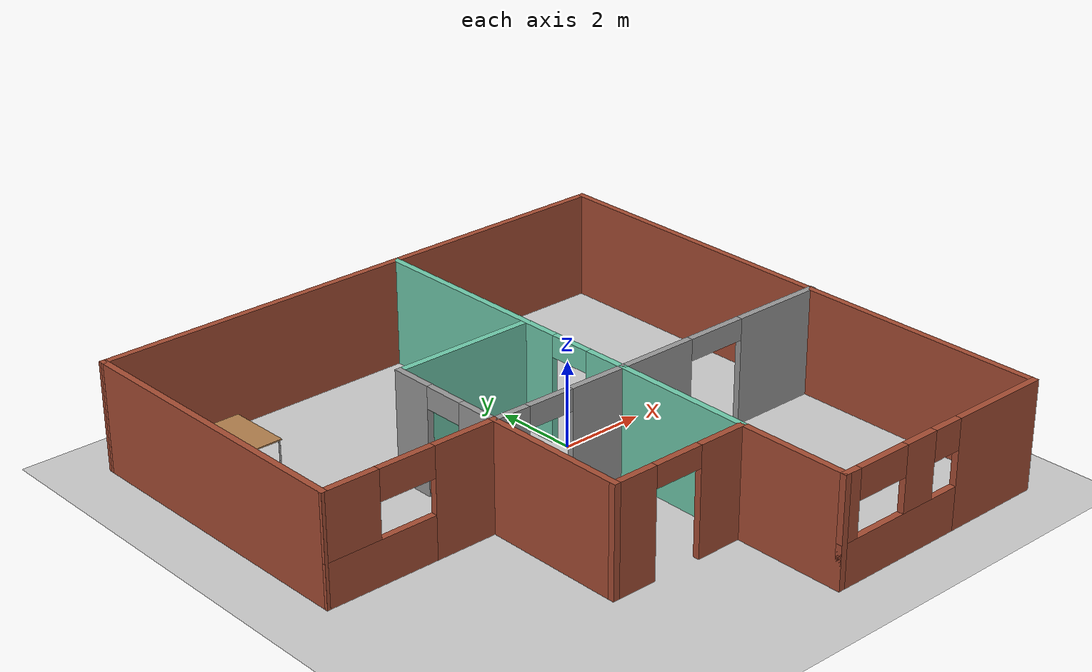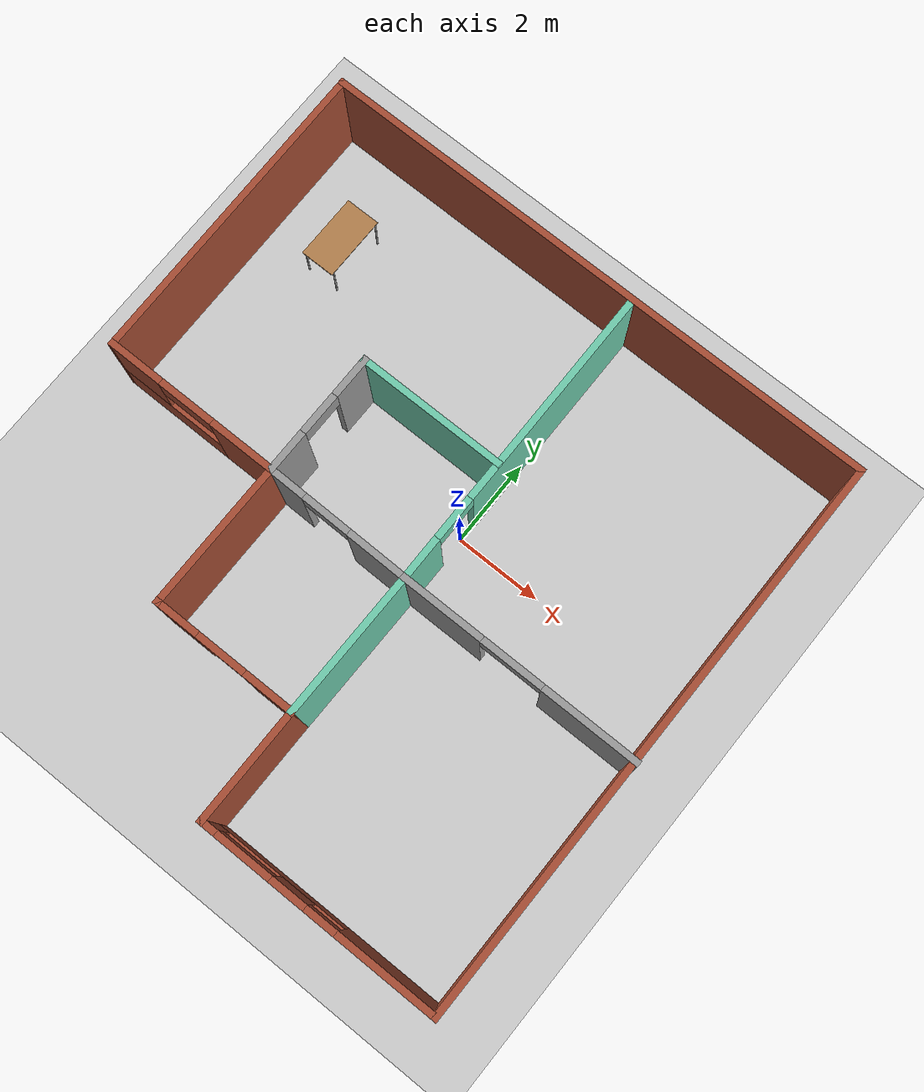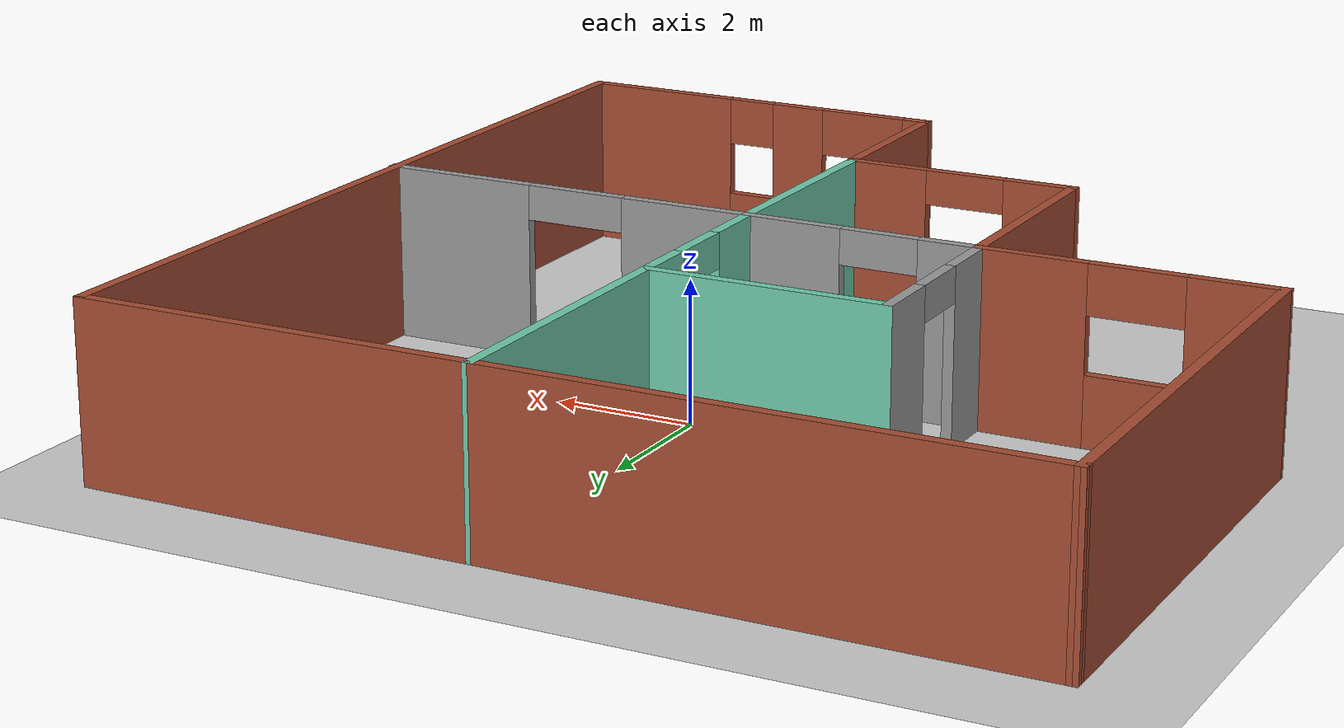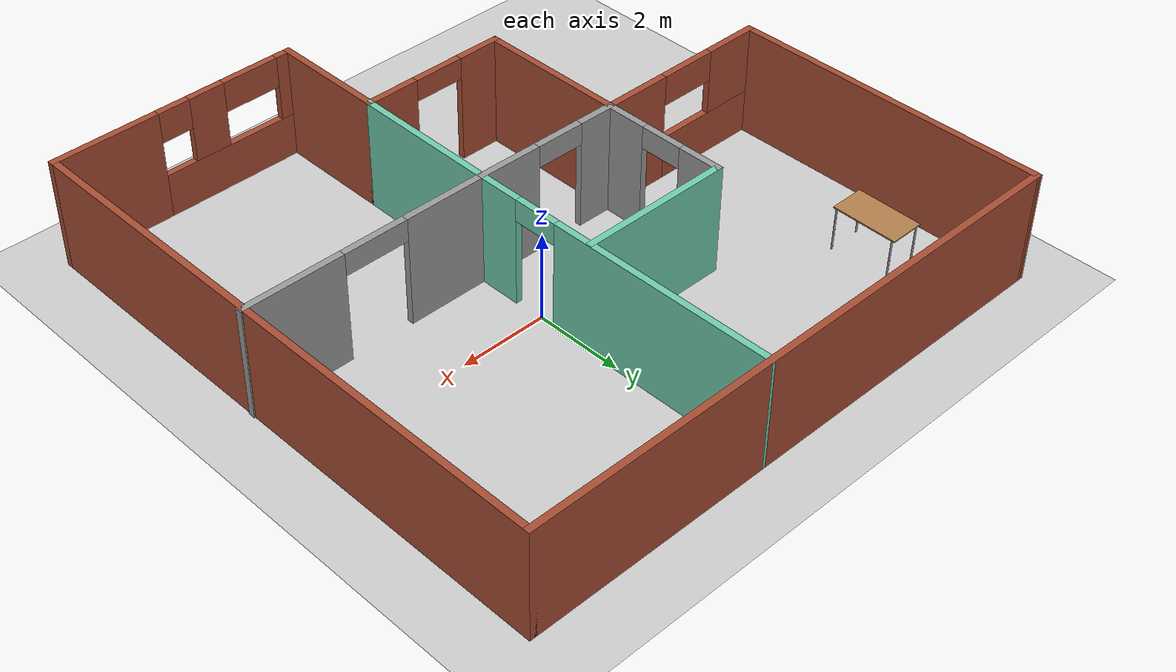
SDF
<sdf version="1.6">
 <world name="default">
  <plugin name="startup_message" filename="libstartup_message.so"/>
  <light name="sun" type="directional">
   <pose>0 0 10 0 -0 0</pose>
   <diffuse>0.8 0.8 0.8 1</diffuse>
   <specular>0.2 0.2 0.2 1</specular>
   <attenuation>
    <range>1000</range>
    <constant>0.9</constant>
    <linear>0.01</linear>
    <quadratic>0.001</quadratic>
   </attenuation>
   <direction>-0.5 0.1 -0.9</direction>
  </light>
  <model name="ground_plane">
   <static>1</static>
   <link name="link">
    <collision name="collision">
     <geometry><plane><normal>0 0 1</normal><size>100 100</size></plane></geometry>
     <surface>
      <contact><collide_bitmask>65535</collide_bitmask></contact>
      <friction><ode><mu>100</mu><mu2>50</mu2></ode></friction>
     </surface>
    </collision>
    <visual name="visual">
     <cast_shadows>0</cast_shadows>
     <geometry><plane><normal>0 0 1</normal><size>100 100</size></plane></geometry>
     <material>
      <script><uri>file://media/materials/scripts/gazebo.material</uri><name>Gazebo/Grey</name></script>
     </material>
    </visual>
   </link>
  </model>
  <gravity>0 0 -9.8</gravity>
  <magnetic_field>6e-06 2.3e-05 -4.2e-05</magnetic_field>
  <atmosphere type="adiabatic"/>
  <physics name="default_physics" default="0" type="ode">
   <max_step_size>0.001</max_step_size>
   <real_time_factor>1</real_time_factor>
   <real_time_update_rate>1000</real_time_update_rate>
  </physics>
  <scene><ambient>0.4 0.4 0.4 1</ambient><background>0.7 0.7 0.7 1</background><shadows>1</shadows></scene>
  <audio><device>default</device></audio>
  <spherical_coordinates>
   <surface_model>EARTH_WGS84</surface_model>
   <latitude_deg>0</latitude_deg>
   <longitude_deg>0</longitude_deg>
   <elevation>0</elevation>
   <heading_deg>0</heading_deg>
  </spherical_coordinates>
  <model name="building_1floor">
   <pose>-0.974331 -1.00664 0 0 -0 0</pose>
   <link name="Wall_0">
    <collision name="Wall_0_Collision">
     <geometry><box><size>13.25 0.15 2.5</size></box></geometry>
     <pose>0 0 1.25 0 -0 0</pose>
    </collision>
    <visual name="Wall_0_Visual">
     <pose>0 0 1.25 0 -0 0</pose>
     <geometry><box><size>13.25 0.15 2.5</size></box></geometry>
     <material>
      <script><uri>file://media/materials/scripts/gazebo.material</uri><name>Gazebo/Bricks</name></script>
      <ambient>1 1 1 1</ambient>
     </material>
     <meta><layer>0</layer></meta>
    </visual>
    <pose>-0.013373 6.54974 0 0 -0 0</pose>
   </link>
   <link name="Wall_1">
    <collision name="Wall_1_Collision">
     <geometry><box><size>13.25 0.15 2.5</size></box></geometry>
     <pose>0 0 1.25 0 -0 0</pose>
    </collision>
    <visual name="Wall_1_Visual">
     <pose>0 0 1.25 0 -0 0</pose>
     <geometry><box><size>13.25 0.15 2.5</size></box></geometry>
     <material>
      <script><uri>file://media/materials/scripts/gazebo.material</uri><name>Gazebo/Bricks</name></script>
      <ambient>1 1 1 1</ambient>
     </material>
     <meta><layer>0</layer></meta>
    </visual>
    <pose>6.53663 -0.000261 0 0 -0 -1.5708</pose>
   </link>
   <link name="Wall_11">
    <pose>0.952525 2.95666 0 0 -0 -1.56763</pose>
    <visual name="Wall_11_Visual_0">
     <pose>-1.04133 0 1.25 0 -0 0</pose>
     <geometry><box><size>5.25349 0.15 2.5</size></box></geometry>
     <material>
      <script><uri>file://media/materials/scripts/gazebo.material</uri><name>Gazebo/Grey</name></script>
      <ambient>0.435294 0.796078 0.67451 1</ambient>
     </material>
     <meta><layer>0</layer></meta>
    </visual>
    <collision name="Wall_11_Collision_0">
     <geometry><box><size>5.25349 0.15 2.5</size></box></geometry>
     <pose>-1.04133 0 1.25 0 -0 0</pose>
    </collision>
    <visual name="Wall_11_Visual_1">
     <pose>3.13356 0 1.25 0 -0 0</pose>
     <geometry><box><size>1.06903 0.15 2.5</size></box></geometry>
     <material>
      <script><uri>file://media/materials/scripts/gazebo.material</uri><name>Gazebo/Grey</name></script>
      <ambient>0.435294 0.796078 0.67451 1</ambient>
     </material>
     <meta><layer>0</layer></meta>
    </visual>
    <collision name="Wall_11_Collision_1">
     <geometry><box><size>1.06903 0.15 2.5</size></box></geometry>
     <pose>3.13356 0 1.25 0 -0 0</pose>
    </collision>
    <visual name="Wall_11_Visual_2">
     <pose>2.09223 0 2.25 0 -0 0</pose>
     <geometry><box><size>1.01363 0.15 0.5</size></box></geometry>
     <material>
      <script><uri>file://media/materials/scripts/gazebo.material</uri><name>Gazebo/Grey</name></script>
      <ambient>0.435294 0.796078 0.67451 1</ambient>
     </material>
     <meta><layer>0</layer></meta>
    </visual>
    <collision name="Wall_11_Collision_2">
     <geometry><box><size>1.01363 0.15 0.5</size></box></geometry>
     <pose>2.09223 0 2.25 0 -0 0</pose>
    </collision>
   </link>
   <link name="Wall_12">
    <pose>-0.724738 -0.618338 0 0 -0 3.13089</pose>
    <visual name="Wall_12_Visual_0">
     <pose>-1.02459 0 1.25 0 -0 0</pose>
     <geometry><box><size>1.47829 0.15 2.5</size></box></geometry>
     <material>
      <script><uri>file://media/materials/scripts/gazebo.material</uri><name>Gazebo/Grey</name></script>
      <ambient>1 1 1 1</ambient>
     </material>
     <meta><layer>0</layer></meta>
    </visual>
    <collision name="Wall_12_Collision_0">
     <geometry><box><size>1.47829 0.15 2.5</size></box></geometry>
     <pose>-1.02459 0 1.25 0 -0 0</pose>
    </collision>
    <visual name="Wall_12_Visual_1">
     <pose>1.3026 0 1.25 0 -0 0</pose>
     <geometry><box><size>0.922267 0.15 2.5</size></box></geometry>
     <material>
      <script><uri>file://media/materials/scripts/gazebo.material</uri><name>Gazebo/Grey</name></script>
      <ambient>1 1 1 1</ambient>
     </material>
     <meta><layer>0</layer></meta>
    </visual>
    <collision name="Wall_12_Collision_1">
     <geometry><box><size>0.922267 0.15 2.5</size></box></geometry>
     <pose>1.3026 0 1.25 0 -0 0</pose>
    </collision>
    <visual name="Wall_12_Visual_2">
     <pose>0.278009 0 2.25 0 -0 0</pose>
     <geometry><box><size>1.12691 0.15 0.5</size></box></geometry>
     <material>
      <script><uri>file://media/materials/scripts/gazebo.material</uri><name>Gazebo/Grey</name></script>
      <ambient>1 1 1 1</ambient>
     </material>
     <meta><layer>0</layer></meta>
    </visual>
    <collision name="Wall_12_Collision_2">
     <geometry><box><size>1.12691 0.15 0.5</size></box></geometry>
     <pose>0.278009 0 2.25 0 -0 0</pose>
    </collision>
   </link>
   <link name="Wall_13">
    <pose>-2.41337 0.824739 0 0 -0 1.5708</pose>
    <visual name="Wall_13_Visual_0">
     <pose>-0.98355 0 1.25 0 -0 0</pose>
     <geometry><box><size>1.0329 0.15 2.5</size></box></geometry>
     <material>
      <script><uri>file://media/materials/scripts/gazebo.material</uri><name>Gazebo/Grey</name></script>
      <ambient>1 1 1 1</ambient>
     </material>
     <meta><layer>0</layer></meta>
    </visual>
    <collision name="Wall_13_Collision_0">
     <geometry><box><size>1.0329 0.15 2.5</size></box></geometry>
     <pose>-0.98355 0 1.25 0 -0 0</pose>
    </collision>
    <visual name="Wall_13_Visual_1">
     <pose>1.00056 0 1.25 0 -0 0</pose>
     <geometry><box><size>0.998878 0.15 2.5</size></box></geometry>
     <material>
      <script><uri>file://media/materials/scripts/gazebo.material</uri><name>Gazebo/Grey</name></script>
      <ambient>1 1 1 1</ambient>
     </material>
     <meta><layer>0</layer></meta>
    </visual>
    <collision name="Wall_13_Collision_1">
     <geometry><box><size>0.998878 0.15 2.5</size></box></geometry>
     <pose>1.00056 0 1.25 0 -0 0</pose>
    </collision>
    <visual name="Wall_13_Visual_2">
     <pose>0.017011 0 2.25 0 -0 0</pose>
     <geometry><box><size>0.968223 0.15 0.5</size></box></geometry>
     <material>
      <script><uri>file://media/materials/scripts/gazebo.material</uri><name>Gazebo/Grey</name></script>
      <ambient>1 1 1 1</ambient>
     </material>
     <meta><layer>0</layer></meta>
    </visual>
    <collision name="Wall_13_Collision_2">
     <geometry><box><size>0.968223 0.15 0.5</size></box></geometry>
     <pose>0.017011 0 2.25 0 -0 0</pose>
    </collision>
   </link>
   <link name="Wall_14">
    <collision name="Wall_14_Collision">
     <geometry><box><size>3.5 0.15 2.5</size></box></geometry>
     <pose>0 0 1.25 0 -0 0</pose>
    </collision>
    <visual name="Wall_14_Visual">
     <pose>0 0 1.25 0 -0 0</pose>
     <geometry><box><size>3.5 0.15 2.5</size></box></geometry>
     <material>
      <script><uri>file://media/materials/scripts/gazebo.material</uri><name>Gazebo/Grey</name></script>
      <ambient>0.435294 0.796078 0.67451 1</ambient>
     </material>
     <meta><layer>0</layer></meta>
    </visual>
    <pose>-0.738373 2.24974 0 0 -0 0</pose>
   </link>
   <link name="Wall_16">
    <collision name="Wall_16_Collision">
     <geometry><box><size>3.46396 0.15 2.5</size></box></geometry>
     <pose>0 0 1.25 0 -0 0</pose>
    </collision>
    <visual name="Wall_16_Visual">
     <pose>0 0 1.25 0 -0 0</pose>
     <geometry><box><size>3.46396 0.15 2.5</size></box></geometry>
     <material>
      <script><uri>file://media/materials/scripts/gazebo.material</uri><name>Gazebo/Grey</name></script>
      <ambient>0.435294 0.796078 0.67451 1</ambient>
     </material>
     <meta><layer>0</layer></meta>
    </visual>
    <pose>0.950262 -2.29334 0 0 -0 -1.57902</pose>
   </link>
   <link name="Wall_18">
    <pose>3.7639 -0.636415 0 0 -0 0</pose>
    <visual name="Wall_18_Visual_0">
     <pose>-1.88565 0 1.25 0 -0 0</pose>
     <geometry><box><size>1.97869 0.15 2.5</size></box></geometry>
     <material>
      <script><uri>file://media/materials/scripts/gazebo.material</uri><name>Gazebo/Grey</name></script>
      <ambient>1 1 1 1</ambient>
     </material>
     <meta><layer>0</layer></meta>
    </visual>
    <collision name="Wall_18_Collision_0">
     <geometry><box><size>1.97869 0.15 2.5</size></box></geometry>
     <pose>-1.88565 0 1.25 0 -0 0</pose>
    </collision>
    <visual name="Wall_18_Visual_1">
     <pose>1.72361 0 1.25 0 -0 0</pose>
     <geometry><box><size>2.30278 0.15 2.5</size></box></geometry>
     <material>
      <script><uri>file://media/materials/scripts/gazebo.material</uri><name>Gazebo/Grey</name></script>
      <ambient>1 1 1 1</ambient>
     </material>
     <meta><layer>0</layer></meta>
    </visual>
    <collision name="Wall_18_Collision_1">
     <geometry><box><size>2.30278 0.15 2.5</size></box></geometry>
     <pose>1.72361 0 1.25 0 -0 0</pose>
    </collision>
    <visual name="Wall_18_Visual_2">
     <pose>-0.162045 0 2.25 0 -0 0</pose>
     <geometry><box><size>1.46853 0.15 0.5</size></box></geometry>
     <material>
      <script><uri>file://media/materials/scripts/gazebo.material</uri><name>Gazebo/Grey</name></script>
      <ambient>1 1 1 1</ambient>
     </material>
     <meta><layer>0</layer></meta>
    </visual>
    <collision name="Wall_18_Collision_2">
     <geometry><box><size>1.46853 0.15 0.5</size></box></geometry>
     <pose>-0.162045 0 2.25 0 -0 0</pose>
    </collision>
   </link>
   <link name="Wall_2">
    <pose>3.73663 -6.55026 0 0 -0 3.14159</pose>
    <visual name="Wall_2_Visual_0">
     <pose>-1.66113 0 1.25 0 -0 0</pose>
     <geometry><box><size>2.42774 0.15 2.5</size></box></geometry>
     <material>
      <script><uri>file://media/materials/scripts/gazebo.material</uri><name>Gazebo/Bricks</name></script>
      <ambient>1 1 1 1</ambient>
     </material>
     <meta><layer>0</layer></meta>
    </visual>
    <collision name="Wall_2_Collision_0">
     <geometry><box><size>2.42774 0.15 2.5</size></box></geometry>
     <pose>-1.66113 0 1.25 0 -0 0</pose>
    </collision>
    <visual name="Wall_2_Visual_1">
     <pose>1.21387 0 0.5 0 -0 0</pose>
     <geometry><box><size>3.32226 0.15 1</size></box></geometry>
     <material>
      <script><uri>file://media/materials/scripts/gazebo.material</uri><name>Gazebo/Bricks</name></script>
      <ambient>1 1 1 1</ambient>
     </material>
     <meta><layer>0</layer></meta>
    </visual>
    <collision name="Wall_2_Collision_1">
     <geometry><box><size>3.32226 0.15 1</size></box></geometry>
     <pose>1.21387 0 0.5 0 -0 0</pose>
    </collision>
    <visual name="Wall_2_Visual_2">
     <pose>0.703367 0 1.75 0 -0 0</pose>
     <geometry><box><size>0.837262 0.15 1.5</size></box></geometry>
     <material>
      <script><uri>file://media/materials/scripts/gazebo.material</uri><name>Gazebo/Bricks</name></script>
      <ambient>1 1 1 1</ambient>
     </material>
     <meta><layer>0</layer></meta>
    </visual>
    <collision name="Wall_2_Collision_2">
     <geometry><box><size>0.837262 0.15 1.5</size></box></geometry>
     <pose>0.703367 0 1.75 0 -0 0</pose>
    </collision>
    <visual name="Wall_2_Visual_3">
     <pose>2.66 0 1.75 0 -0 0</pose>
     <geometry><box><size>0.430002 0.15 1.5</size></box></geometry>
     <material>
      <script><uri>file://media/materials/scripts/gazebo.material</uri><name>Gazebo/Bricks</name></script>
      <ambient>1 1 1 1</ambient>
     </material>
     <meta><layer>0</layer></meta>
    </visual>
    <collision name="Wall_2_Collision_3">
     <geometry><box><size>0.430002 0.15 1.5</size></box></geometry>
     <pose>2.66 0 1.75 0 -0 0</pose>
    </collision>
    <visual name="Wall_2_Visual_4">
     <pose>-0.081263 0 2.15 0 -0 0</pose>
     <geometry><box><size>0.732 0.15 0.7</size></box></geometry>
     <material>
      <script><uri>file://media/materials/scripts/gazebo.material</uri><name>Gazebo/Bricks</name></script>
      <ambient>1 1 1 1</ambient>
     </material>
     <meta><layer>0</layer></meta>
    </visual>
    <collision name="Wall_2_Collision_4">
     <geometry><box><size>0.732 0.15 0.7</size></box></geometry>
     <pose>-0.081263 0 2.15 0 -0 0</pose>
    </collision>
    <visual name="Wall_2_Visual_5">
     <pose>1.7835 0 2.15 0 -0 0</pose>
     <geometry><box><size>1.323 0.15 0.7</size></box></geometry>
     <material>
      <script><uri>file://media/materials/scripts/gazebo.material</uri><name>Gazebo/Bricks</name></script>
      <ambient>1 1 1 1</ambient>
     </material>
     <meta><layer>0</layer></meta>
    </visual>
    <collision name="Wall_2_Collision_5">
     <geometry><box><size>1.323 0.15 0.7</size></box></geometry>
     <pose>1.7835 0 2.15 0 -0 0</pose>
    </collision>
   </link>
   <link name="Wall_3">
    <collision name="Wall_3_Collision">
     <geometry><box><size>2.75 0.15 2.5</size></box></geometry>
     <pose>0 0 1.25 0 -0 0</pose>
    </collision>
    <visual name="Wall_3_Visual">
     <pose>0 0 1.25 0 -0 0</pose>
     <geometry><box><size>2.75 0.15 2.5</size></box></geometry>
     <material>
      <script><uri>file://media/materials/scripts/gazebo.material</uri><name>Gazebo/Bricks</name></script>
      <ambient>1 1 1 1</ambient>
     </material>
     <meta><layer>0</layer></meta>
    </visual>
    <pose>0.936627 -5.25026 0 0 -0 1.5708</pose>
   </link>
   <link name="Wall_4">
    <pose>-0.738373 -3.95026 0 0 -0 3.14159</pose>
    <visual name="Wall_4_Visual_0">
     <pose>-1.12677 0 1.25 0 -0 0</pose>
     <geometry><box><size>1.24645 0.15 2.5</size></box></geometry>
     <material>
      <script><uri>file://media/materials/scripts/gazebo.material</uri><name>Gazebo/Bricks</name></script>
      <ambient>1 1 1 1</ambient>
     </material>
     <meta><layer>0</layer></meta>
    </visual>
    <collision name="Wall_4_Collision_0">
     <geometry><box><size>1.24645 0.15 2.5</size></box></geometry>
     <pose>-1.12677 0 1.25 0 -0 0</pose>
    </collision>
    <visual name="Wall_4_Visual_1">
     <pose>1.20967 0 1.25 0 -0 0</pose>
     <geometry><box><size>1.08065 0.15 2.5</size></box></geometry>
     <material>
      <script><uri>file://media/materials/scripts/gazebo.material</uri><name>Gazebo/Bricks</name></script>
      <ambient>1 1 1 1</ambient>
     </material>
     <meta><layer>0</layer></meta>
    </visual>
    <collision name="Wall_4_Collision_1">
     <geometry><box><size>1.08065 0.15 2.5</size></box></geometry>
     <pose>1.20967 0 1.25 0 -0 0</pose>
    </collision>
    <visual name="Wall_4_Visual_2">
     <pose>0.082899 0 2.25 0 -0 0</pose>
     <geometry><box><size>1.17289 0.15 0.5</size></box></geometry>
     <material>
      <script><uri>file://media/materials/scripts/gazebo.material</uri><name>Gazebo/Bricks</name></script>
      <ambient>1 1 1 1</ambient>
     </material>
     <meta><layer>0</layer></meta>
    </visual>
    <collision name="Wall_4_Collision_2">
     <geometry><box><size>1.17289 0.15 0.5</size></box></geometry>
     <pose>0.082899 0 2.25 0 -0 0</pose>
    </collision>
   </link>
   <link name="Wall_5">
    <collision name="Wall_5_Collision">
     <geometry><box><size>3.5 0.15 2.5</size></box></geometry>
     <pose>0 0 1.25 0 -0 0</pose>
    </collision>
    <visual name="Wall_5_Visual">
     <pose>0 0 1.25 0 -0 0</pose>
     <geometry><box><size>3.5 0.15 2.5</size></box></geometry>
     <material>
      <script><uri>file://media/materials/scripts/gazebo.material</uri><name>Gazebo/Bricks</name></script>
      <ambient>1 1 1 1</ambient>
     </material>
     <meta><layer>0</layer></meta>
    </visual>
    <pose>-2.41337 -2.27526 0 0 -0 1.5708</pose>
   </link>
   <link name="Wall_6">
    <pose>-4.46337 -0.600261 0 0 -0 3.14159</pose>
    <visual name="Wall_6_Visual_0">
     <pose>-1.3268 0 1.25 0 -0 0</pose>
     <geometry><box><size>1.5964 0.15 2.5</size></box></geometry>
     <material>
      <script><uri>file://media/materials/scripts/gazebo.material</uri><name>Gazebo/Bricks</name></script>
      <ambient>1 1 1 1</ambient>
     </material>
     <meta><layer>0</layer></meta>
    </visual>
    <collision name="Wall_6_Collision_0">
     <geometry><box><size>1.5964 0.15 2.5</size></box></geometry>
     <pose>-1.3268 0 1.25 0 -0 0</pose>
    </collision>
    <visual name="Wall_6_Visual_1">
     <pose>0.798202 0 0.5 0 -0 0</pose>
     <geometry><box><size>2.6536 0.15 1</size></box></geometry>
     <material>
      <script><uri>file://media/materials/scripts/gazebo.material</uri><name>Gazebo/Bricks</name></script>
      <ambient>1 1 1 1</ambient>
     </material>
     <meta><layer>0</layer></meta>
    </visual>
    <collision name="Wall_6_Collision_1">
     <geometry><box><size>2.6536 0.15 1</size></box></geometry>
     <pose>0.798202 0 0.5 0 -0 0</pose>
    </collision>
    <visual name="Wall_6_Visual_2">
     <pose>1.4597 0 1.75 0 -0 0</pose>
     <geometry><box><size>1.3306 0.15 1.5</size></box></geometry>
     <material>
      <script><uri>file://media/materials/scripts/gazebo.material</uri><name>Gazebo/Bricks</name></script>
      <ambient>1 1 1 1</ambient>
     </material>
     <meta><layer>0</layer></meta>
    </visual>
    <collision name="Wall_6_Collision_2">
     <geometry><box><size>1.3306 0.15 1.5</size></box></geometry>
     <pose>1.4597 0 1.75 0 -0 0</pose>
    </collision>
    <visual name="Wall_6_Visual_3">
     <pose>0.132904 0 2.15 0 -0 0</pose>
     <geometry><box><size>1.323 0.15 0.7</size></box></geometry>
     <material>
      <script><uri>file://media/materials/scripts/gazebo.material</uri><name>Gazebo/Bricks</name></script>
      <ambient>1 1 1 1</ambient>
     </material>
     <meta><layer>0</layer></meta>
    </visual>
    <collision name="Wall_6_Collision_3">
     <geometry><box><size>1.323 0.15 0.7</size></box></geometry>
     <pose>0.132904 0 2.15 0 -0 0</pose>
    </collision>
   </link>
   <link name="Wall_9">
    <collision name="Wall_9_Collision">
     <geometry><box><size>7.30018 0.15 2.5</size></box></geometry>
     <pose>0 0 1.25 0 -0 0</pose>
    </collision>
    <visual name="Wall_9_Visual">
     <pose>0 0 1.25 0 -0 0</pose>
     <geometry><box><size>7.30018 0.15 2.5</size></box></geometry>
     <material>
      <script><uri>file://media/materials/scripts/gazebo.material</uri><name>Gazebo/Bricks</name></script>
      <ambient>1 1 1 1</ambient>
     </material>
     <meta><layer>0</layer></meta>
    </visual>
    <pose>-6.53837 2.97474 0 0 -0 1.57779</pose>
   </link>
   <static>1</static>
  </model>
  <model name="table_clone_clone">
   <static>1</static>
   <link name="link">
    <collision name="surface">
     <pose>0 0 1 0 -0 0</pose>
     <geometry><box><size>1.5 0.8 0.03</size></box></geometry>
     <surface><friction><ode><mu>0.6</mu><mu2>0.6</mu2></ode></friction></surface>
    </collision>
    <visual name="visual1">
     <pose>0 0 1 0 -0 0</pose>
     <geometry><box><size>1.5 0.8 0.03</size></box></geometry>
     <material>
      <script><uri>file://media/materials/scripts/gazebo.material</uri><name>Gazebo/Wood</name></script>
     </material>
    </visual>
    <collision name="front_left_leg">
     <pose>0.68 0.38 0.5 0 -0 0</pose>
     <geometry><cylinder><radius>0.02</radius><length>1</length></cylinder></geometry>
    </collision>
    <visual name="front_left_leg">
     <pose>0.68 0.38 0.5 0 -0 0</pose>
     <geometry><cylinder><radius>0.02</radius><length>1</length></cylinder></geometry>
     <material>
      <script><uri>file://media/materials/scripts/gazebo.material</uri><name>Gazebo/Grey</name></script>
     </material>
    </visual>
    <collision name="front_right_leg">
     <pose>0.68 -0.38 0.5 0 -0 0</pose>
     <geometry><cylinder><radius>0.02</radius><length>1</length></cylinder></geometry>
    </collision>
    <visual name="front_right_leg">
     <pose>0.68 -0.38 0.5 0 -0 0</pose>
     <geometry><cylinder><radius>0.02</radius><length>1</length></cylinder></geometry>
     <material>
      <script><uri>file://media/materials/scripts/gazebo.material</uri><name>Gazebo/Grey</name></script>
     </material>
    </visual>
    <collision name="back_right_leg">
     <pose>-0.68 -0.38 0.5 0 -0 0</pose>
     <geometry><cylinder><radius>0.02</radius><length>1</length></cylinder></geometry>
    </collision>
    <visual name="back_right_leg">
     <pose>-0.68 -0.38 0.5 0 -0 0</pose>
     <geometry><cylinder><radius>0.02</radius><length>1</length></cylinder></geometry>
     <material>
      <script><uri>file://media/materials/scripts/gazebo.material</uri><name>Gazebo/Grey</name></script>
     </material>
    </visual>
    <collision name="back_left_leg">
     <pose>-0.68 0.38 0.5 0 -0 0</pose>
     <geometry><cylinder><radius>0.02</radius><length>1</length></cylinder></geometry>
    </collision>
    <visual name="back_left_leg">
     <pose>-0.68 0.38 0.5 0 -0 0</pose>
     <geometry><cylinder><radius>0.02</radius><length>1</length></cylinder></geometry>
     <material>
      <script><uri>file://media/materials/scripts/gazebo.material</uri><name>Gazebo/Grey</name></script>
     </material>
    </visual>
   </link>
   <pose>-5.84839 3.25063 0.156395 4.3e-05 0.013999 1.57384</pose>
  </model>
  <plugin filename="libcollision_map_creator.so" name="collision_map_creator"/>
 </world>
</sdf>
